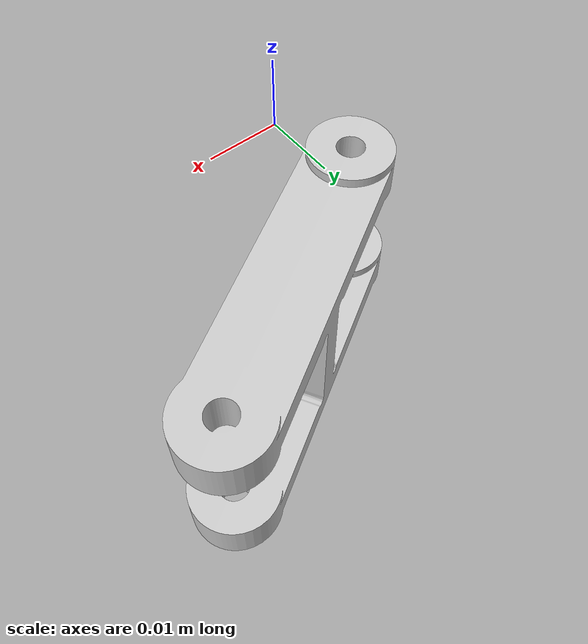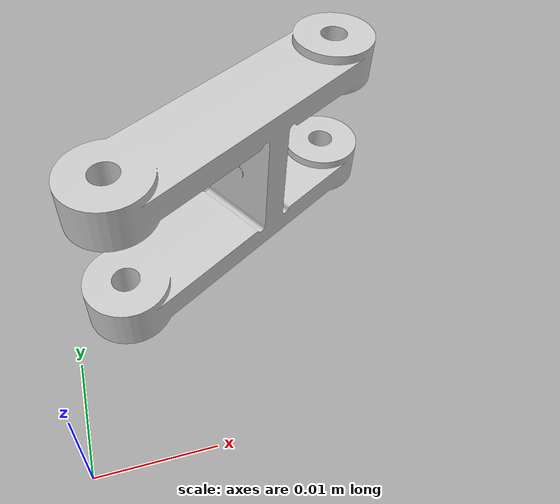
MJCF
<mujoco model="gripper_right2">
  <default>
    <default class="visual">
      <geom group="2" type="mesh" contype="0" conaffinity="0"/>
    </default>
    <default class="collision">
      <geom group="3" type="mesh"/>
    </default>
  </default>
  <asset>
    <material name="material_0.004" specular="0.0" shininess="0.0" rgba="0.800000 0.800000 0.800000 1.000000"/>
    <mesh file="gripper_right2.obj"/>
  </asset>
  <worldbody>
    <body name="gripper_right2">
      <geom material="material_0.004" mesh="gripper_right2" class="visual"/>
      <geom mesh="gripper_right2" class="collision"/>
    </body>
  </worldbody>
</mujoco>
